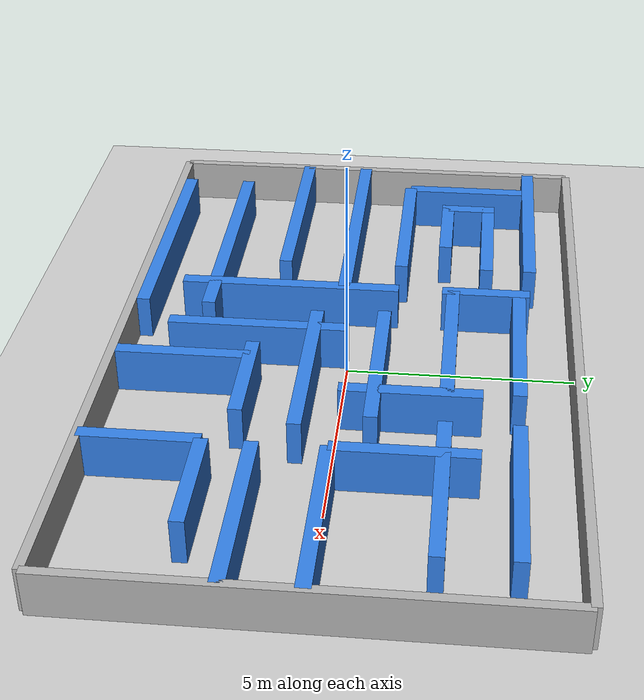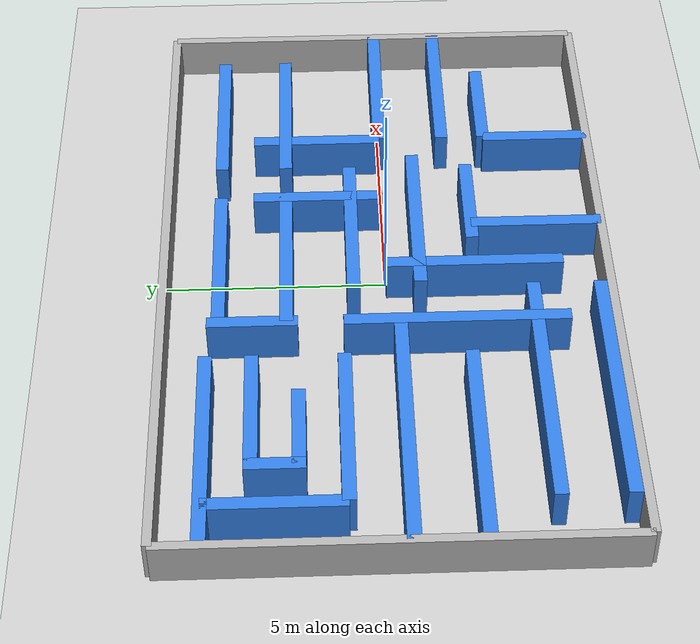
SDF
<?xml version="1.0" ?>
<sdf version="1.7">
  <world name="maze_world_3">
    <physics type="ode">
      <real_time_update_rate>1000.0</real_time_update_rate>
      <max_step_size>0.001</max_step_size>
      <real_time_factor>1</real_time_factor>
      <ode>
        <solver>
          <type>quick</type>
          <iters>150</iters>
          <precon_iters>0</precon_iters>
          <sor>1.400000</sor>
          <use_dynamic_moi_rescaling>1</use_dynamic_moi_rescaling>
        </solver>
        <constraints>
          <cfm>0.00001</cfm>
          <erp>0.2</erp>
          <contact_max_correcting_vel>2000.000000</contact_max_correcting_vel>
          <contact_surface_layer>0.01000</contact_surface_layer>
        </constraints>
      </ode>
    </physics>
    <plugin
      filename="gz-sim-physics-system"
      name="gz::sim::systems::Physics">
    </plugin>
    <plugin
      filename="gz-sim-user-commands-system"
      name="gz::sim::systems::UserCommands">
    </plugin>
    <plugin
      filename="gz-sim-scene-broadcaster-system"
      name="gz::sim::systems::SceneBroadcaster">
    </plugin>
    <plugin
      filename="gz-sim-sensors-system"
      name="gz::sim::systems::Sensors">
      <render_engine>ogre2</render_engine>
    </plugin>
    <plugin
      filename="gz-sim-imu-system"
      name="gz::sim::systems::Imu">
    </plugin>

    <include>
      <uri>https://fuel.gazebosim.org/1.0/OpenRobotics/models/Ground Plane</uri>
    </include>

    <include>
      <uri>https://fuel.gazebosim.org/1.0/OpenRobotics/models/Sun</uri>
    </include>

    <!-- Outer 16 x 10 box -->
    <model name="outer_wall_north">
      <static>true</static>
      <pose>0 5 0.5 0 0 0</pose>
      <link name="link">
        <collision name="collision">
          <geometry><box><size>16 0.2 1</size></box></geometry>
        </collision>
        <visual name="visual">
          <geometry><box><size>16 0.2 1</size></box></geometry>
          <material><ambient>0.7 0.7 0.7 1</ambient></material>
        </visual>
      </link>
    </model>

    <model name="outer_wall_south">
      <static>true</static>
      <pose>0 -5 0.5 0 0 0</pose>
      <link name="link">
        <collision name="collision">
          <geometry><box><size>16 0.2 1</size></box></geometry>
        </collision>
        <visual name="visual">
          <geometry><box><size>16 0.2 1</size></box></geometry>
          <material><ambient>0.7 0.7 0.7 1</ambient></material>
        </visual>
      </link>
    </model>

    <model name="outer_wall_east">
      <static>true</static>
      <pose>8 0 0.5 0 0 0</pose>
      <link name="link">
        <collision name="collision">
          <geometry><box><size>0.2 10 1</size></box></geometry>
        </collision>
        <visual name="visual">
          <geometry><box><size>0.2 10 1</size></box></geometry>
          <material><ambient>0.7 0.7 0.7 1</ambient></material>
        </visual>
      </link>
    </model>

    <model name="outer_wall_west">
      <static>true</static>
      <pose>-8 0 0.5 0 0 0</pose>
      <link name="link">
        <collision name="collision">
          <geometry><box><size>0.2 10 1</size></box></geometry>
        </collision>
        <visual name="visual">
          <geometry><box><size>0.2 10 1</size></box></geometry>
          <material><ambient>0.7 0.7 0.7 1</ambient></material>
        </visual>
      </link>
    </model>

    <!-- Segment 1: horizontal corridor at y = -4, from x = -7 to x = -1 -->

    <!-- Lower wall of segment 1 -->
    <model name="seg1_lower">
      <static>true</static>
      <pose>-4 -4.75 0.5 0 0 0</pose>
      <link name="link">
        <collision name="collision">
          <geometry><box><size>6 0.3 1</size></box></geometry>
        </collision>
        <visual name="visual">
          <geometry><box><size>6 0.3 1</size></box></geometry>
          <material><ambient>0.2 0.5 0.9 1</ambient></material>
        </visual>
      </link>
    </model>

    <!-- Upper wall of segment 1 -->
    <model name="seg1_upper">
      <static>true</static>
      <pose>-4 -3.25 0.5 0 0 0</pose>
      <link name="link">
        <collision name="collision">
          <geometry><box><size>6 0.3 1</size></box></geometry>
        </collision>
        <visual name="visual">
          <geometry><box><size>6 0.3 1</size></box></geometry>
          <material><ambient>0.2 0.5 0.9 1</ambient></material>
        </visual>
      </link>
    </model>

    <!-- Segment 2: vertical corridor at x = -1, from y = -4 to y = 0 -->

    <!-- Left wall of segment 2 -->
    <model name="seg2_left">
      <static>true</static>
      <pose>-2 -1.5 0.5 0 0 0</pose>
      <link name="link">
        <collision name="collision">
          <geometry><box><size>0.3 5 1</size></box></geometry>
        </collision>
        <visual name="visual">
          <geometry><box><size>0.3 5 1</size></box></geometry>
          <material><ambient>0.2 0.5 0.9 1</ambient></material>
        </visual>
      </link>
    </model>

    <!-- Right wall of segment 2 -->
    <model name="seg2_right">
      <static>true</static>
      <pose>-0.25 -2 0.5 0 0 0</pose>
      <link name="link">
        <collision name="collision">
          <geometry><box><size>0.3 4 1</size></box></geometry>
        </collision>
        <visual name="visual">
          <geometry><box><size>0.3 4 1</size></box></geometry>
          <material><ambient>0.2 0.5 0.9 1</ambient></material>
        </visual>
      </link>
    </model>

    <!-- Segment 3: horizontal corridor at y = 0, from x = -1 to x = 3 -->

    <!-- Lower wall of segment 3 -->
    <model name="seg3_lower">
      <static>true</static>
      <pose>1.25 -0.75 0.5 0 0 0</pose>
      <link name="link">
        <collision name="collision">
          <geometry><box><size>4.25 0.3 1</size></box></geometry>
        </collision>
        <visual name="visual">
          <geometry><box><size>4.25 0.3 1</size></box></geometry>
          <material><ambient>0.2 0.5 0.9 1</ambient></material>
        </visual>
      </link>
    </model>

    <!-- Upper wall of segment 3 -->
    <model name="seg3_upper">
      <static>true</static>
      <pose>1 0.75 0.5 0 0 0</pose>
      <link name="link">
        <collision name="collision">
          <geometry><box><size>4 0.3 1</size></box></geometry>
        </collision>
        <visual name="visual">
          <geometry><box><size>4 0.3 1</size></box></geometry>
          <material><ambient>0.2 0.5 0.9 1</ambient></material>
        </visual>
      </link>
    </model>

    <!-- Segment 4: vertical corridor at x = 3, from y = 0 to y = 3 -->

    <!-- Left wall of segment 4 -->
    <model name="seg4_left">
      <static>true</static>
      <pose>2.0 1.5 0.5 0 0 0</pose>
      <link name="link">
        <collision name="collision">
          <geometry><box><size>0.3 3 1</size></box></geometry>
        </collision>
        <visual name="visual">
          <geometry><box><size>0.3 3 1</size></box></geometry>
          <material><ambient>0.2 0.5 0.9 1</ambient></material>
        </visual>
      </link>
    </model>

    <!-- Right wall of segment 4 -->
    <model name="seg4_right">
      <static>true</static>
      <pose>4.0 1.5 0.5 0 0 0</pose>
      <link name="link">
        <collision name="collision">
          <geometry><box><size>0.3 3 1</size></box></geometry>
        </collision>
        <visual name="visual">
          <geometry><box><size>0.3 3 1</size></box></geometry>
          <material><ambient>0.2 0.5 0.9 1</ambient></material>
        </visual>
      </link>
    </model>

    <!-- Segment 5: horizontal corridor at y = 3, from x = 3 to x = 7 -->

    <!-- Lower wall of segment 5 -->
    <model name="seg5_lower">
      <static>true</static>
      <pose>5 2.25 0.5 0 0 0</pose>
      <link name="link">
        <collision name="collision">
          <geometry><box><size>4 0.3 1</size></box></geometry>
        </collision>
        <visual name="visual">
          <geometry><box><size>4 0.3 1</size></box></geometry>
          <material><ambient>0.2 0.5 0.9 1</ambient></material>
        </visual>
      </link>
    </model>

    <!-- Upper wall of segment 5 -->
    <model name="seg5_upper">
      <static>true</static>
      <pose>5 3.75 0.5 0 0 0</pose>
      <link name="link">
        <collision name="collision">
          <geometry><box><size>4 0.3 1</size></box></geometry>
        </collision>
        <visual name="visual">
          <geometry><box><size>4 0.3 1</size></box></geometry>
          <material><ambient>0.2 0.5 0.9 1</ambient></material>
        </visual>
      </link>
    </model>

    <!-- Segment 6: horizontal corridor -->

    <!-- Lower wall of segment 6 -->
    <model name="seg6_lower">
      <static>true</static>
      <pose>0 2.25 0.5 0 0 0</pose>
      <link name="link">
        <collision name="collision">
          <geometry><box><size>4 0.3 1</size></box></geometry>
        </collision>
        <visual name="visual">
          <geometry><box><size>4 0.3 1</size></box></geometry>
          <material><ambient>0.2 0.5 0.9 1</ambient></material>
        </visual>
      </link>
    </model>

    <!-- Upper wall of segment 6 -->
    <model name="seg6_upper">
      <static>true</static>
      <pose>0 3.75 0.5 0 0 0</pose>
      <link name="link">
        <collision name="collision">
          <geometry><box><size>4 0.3 1</size></box></geometry>
        </collision>
        <visual name="visual">
          <geometry><box><size>4 0.3 1</size></box></geometry>
          <material><ambient>0.2 0.5 0.9 1</ambient></material>
        </visual>
      </link>
    </model>

    <!-- Left wall of segment 6 -->
    <model name="seg6_left">
      <static>true</static>
      <pose>-2.0 3 0.5 0 0 0</pose>
      <link name="link">
        <collision name="collision">
          <geometry><box><size>0.3 2 1</size></box></geometry>
        </collision>
        <visual name="visual">
          <geometry><box><size>0.3 2 1</size></box></geometry>
          <material><ambient>0.2 0.5 0.9 1</ambient></material>
        </visual>
      </link>
    </model>

    <!-- Segment 7: horizontal corridor-->

    <!-- Lower wall of segment 7 -->
    <model name="seg7_lower">
      <static>true</static>
      <pose>6 0 0.5 0 0 0</pose>
      <link name="link">
        <collision name="collision">
          <geometry><box><size>4 0.3 1</size></box></geometry>
        </collision>
        <visual name="visual">
          <geometry><box><size>4 0.3 1</size></box></geometry>
          <material><ambient>0.2 0.5 0.9 1</ambient></material>
        </visual>
      </link>
    </model>

    <!-- Upper wall of segment 7 -->
    <model name="seg7_upper">
      <static>true</static>
      <pose>6 -1.5 0.5 0 0 0</pose>
      <link name="link">
        <collision name="collision">
          <geometry><box><size>4 0.3 1</size></box></geometry>
        </collision>
        <visual name="visual">
          <geometry><box><size>4 0.3 1</size></box></geometry>
          <material><ambient>0.2 0.5 0.9 1</ambient></material>
        </visual>
      </link>
    </model>

    <!-- Segment 8: horizontal corridor -->

    <!-- Lower wall of segment 8 -->
    <model name="seg8_lower">
      <static>true</static>
      <pose>-5.5 -1.75 0.5 0 0 0</pose>
      <link name="link">
        <collision name="collision">
          <geometry><box><size>5 0.3 1</size></box></geometry>
        </collision>
        <visual name="visual">
          <geometry><box><size>5 0.3 1</size></box></geometry>
          <material><ambient>0.2 0.5 0.9 1</ambient></material>
        </visual>
      </link>
    </model>

    <!-- Upper wall of segment 8 -->
    <model name="seg8_upper">
      <static>true</static>
      <pose>-5 -0.25 0.5 0 0 0</pose>
      <link name="link">
        <collision name="collision">
          <geometry><box><size>6 0.3 1</size></box></geometry>
        </collision>
        <visual name="visual">
          <geometry><box><size>6 0.3 1</size></box></geometry>
          <material><ambient>0.2 0.5 0.9 1</ambient></material>
        </visual>
      </link>
    </model>

    <!-- Segment 9: crazy mix -->

    <!-- Lower wall of segment 9 -->
    <model name="seg9_lower">
      <static>true</static>
      <pose>-5 1 0.5 0 0 0</pose>
      <link name="link">
        <collision name="collision">
          <geometry><box><size>4 0.3 1</size></box></geometry>
        </collision>
        <visual name="visual">
          <geometry><box><size>4 0.3 1</size></box></geometry>
          <material><ambient>0.2 0.5 0.9 1</ambient></material>
        </visual>
      </link>
    </model>

    <!-- Middle lower wall of segment 9 -->
    <model name="seg9_middle_lower">
      <static>true</static>
      <pose>-5 2 0.5 0 0 0</pose>
      <link name="link">
        <collision name="collision">
          <geometry><box><size>2 0.3 1</size></box></geometry>
        </collision>
        <visual name="visual">
          <geometry><box><size>2 0.3 1</size></box></geometry>
          <material><ambient>0.2 0.5 0.9 1</ambient></material>
        </visual>
      </link>
    </model>

    <!-- Middle lower wall of segment 9 -->
    <model name="seg9_middle_upper">
      <static>true</static>
      <pose>-4.5 3 0.5 0 0 0</pose>
      <link name="link">
        <collision name="collision">
          <geometry><box><size>3 0.3 1</size></box></geometry>
        </collision>
        <visual name="visual">
          <geometry><box><size>3 0.3 1</size></box></geometry>
          <material><ambient>0.2 0.5 0.9 1</ambient></material>
        </visual>
      </link>
    </model>

    <!-- Upper wall of segment 9 -->
    <model name="seg9_upper">
      <static>true</static>
      <pose>-5.5 4 0.5 0 0 0</pose>
      <link name="link">
        <collision name="collision">
          <geometry><box><size>5 0.3 1</size></box></geometry>
        </collision>
        <visual name="visual">
          <geometry><box><size>5 0.3 1</size></box></geometry>
          <material><ambient>0.2 0.5 0.9 1</ambient></material>
        </visual>
      </link>
    </model>

    <!-- Left wall of segment 9 -->
    <model name="seg9_left">
      <static>true</static>
      <pose>-7 2.5 0.5 0 0 0</pose>
      <link name="link">
        <collision name="collision">
          <geometry><box><size>0.3 3 1</size></box></geometry>
        </collision>
        <visual name="visual">
          <geometry><box><size>0.3 3 1</size></box></geometry>
          <material><ambient>0.2 0.5 0.9 1</ambient></material>
        </visual>
      </link>
    </model>

    <!-- Right wall of segment 9 -->
    <model name="seg9_right">
      <static>true</static>
      <pose>-6 2.5 0.5 0 0 0</pose>
      <link name="link">
        <collision name="collision">
          <geometry><box><size>0.3 1.3 1</size></box></geometry>
        </collision>
        <visual name="visual">
          <geometry><box><size>0.3 1.3 1</size></box></geometry>
          <material><ambient>0.2 0.5 0.9 1</ambient></material>
        </visual>
      </link>
    </model>

    <!-- Segment 10: mix -->

    <!-- Left wall of segment 10 -->
    <model name="seg10_left">
      <static>true</static>
      <pose>1 -3.5 0.5 0 0 0</pose>
      <link name="link">
        <collision name="collision">
          <geometry><box><size>0.3 3 1</size></box></geometry>
        </collision>
        <visual name="visual">
          <geometry><box><size>0.3 3 1</size></box></geometry>
          <material><ambient>0.2 0.5 0.9 1</ambient></material>
        </visual>
      </link>
    </model>

    <!-- Right wall of segment 10 -->
    <model name="seg10_right">
      <static>true</static>
      <pose>4.0 -3.75 0.5 0 0 0</pose>
      <link name="link">
        <collision name="collision">
          <geometry><box><size>0.3 2.5 1</size></box></geometry>
        </collision>
        <visual name="visual">
          <geometry><box><size>0.3 2.5 1</size></box></geometry>
          <material><ambient>0.2 0.5 0.9 1</ambient></material>
        </visual>
      </link>
    </model>

    <!-- Right horizontal wall of segment 10 -->
    <model name="seg10_right_horizontal">
      <static>true</static>
      <pose>5.25 -2.5 0.5 0 0 0</pose>
      <link name="link">
        <collision name="collision">
          <geometry><box><size>2.5 0.3 1</size></box></geometry>
        </collision>
        <visual name="visual">
          <geometry><box><size>2.5 0.3 1</size></box></geometry>
          <material><ambient>0.2 0.5 0.9 1</ambient></material>
        </visual>
      </link>
    </model>

    <!-- Left horizontal wall of segment 10 -->
    <model name="seg10_left_horizontal">
      <static>true</static>
      <pose>1.75 -2 0.5 0 0 0</pose>
      <link name="link">
        <collision name="collision">
          <geometry><box><size>2.5 0.3 1</size></box></geometry>
        </collision>
        <visual name="visual">
          <geometry><box><size>2.5 0.3 1</size></box></geometry>
          <material><ambient>0.2 0.5 0.9 1</ambient></material>
        </visual>
      </link>
    </model>

  </world>
</sdf>
